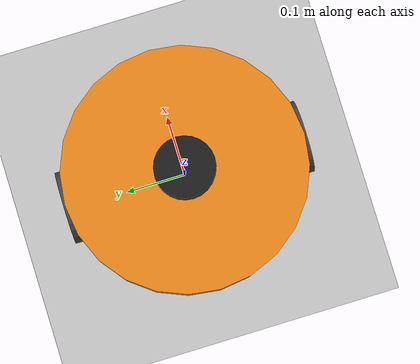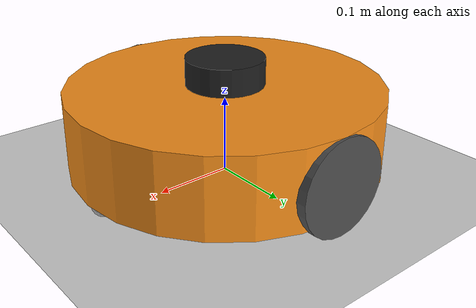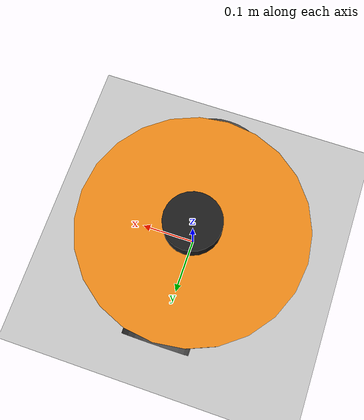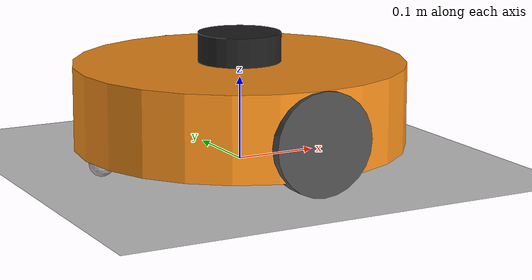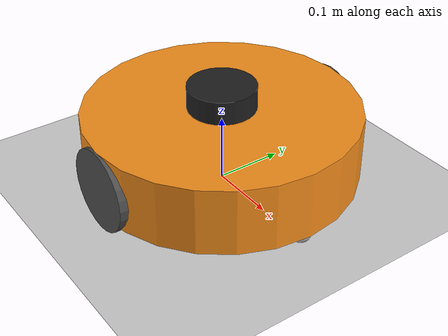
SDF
<sdf version="1.7">
 <world name="default">
  <light name="sun" type="directional">
   <pose>0 0 10 0 -0 0</pose>
   <diffuse>0.8 0.8 0.8 1</diffuse>
   <specular>0.2 0.2 0.2 1</specular>
   <attenuation>
    <range>1000</range>
    <constant>0.9</constant>
    <linear>0.01</linear>
    <quadratic>0.001</quadratic>
   </attenuation>
   <direction>-0.5 0.1 -0.9</direction>
   <spot><inner_angle>0</inner_angle><outer_angle>0</outer_angle><falloff>0</falloff></spot>
  </light>
  <model name="ground_plane">
   <static>1</static>
   <link name="link">
    <collision name="collision">
     <geometry><plane><normal>0 0 1</normal><size>100 100</size></plane></geometry>
     <surface><friction><ode><mu>100</mu><mu2>50</mu2></ode></friction></surface>
    </collision>
    <visual name="visual">
     <cast_shadows>0</cast_shadows>
     <geometry><plane><normal>0 0 1</normal><size>100 100</size></plane></geometry>
     <material>
      <script><uri>file://media/materials/scripts/gazebo.material</uri><name>Gazebo/Grey</name></script>
     </material>
    </visual>
   </link>
  </model>
  <gravity>0 0 -9.8</gravity>
  <magnetic_field>6e-06 2.3e-05 -4.2e-05</magnetic_field>
  <atmosphere type="adiabatic"/>
  <physics type="ode">
   <max_step_size>0.001</max_step_size>
   <real_time_factor>1</real_time_factor>
   <real_time_update_rate>1000</real_time_update_rate>
  </physics>
  <scene><ambient>0.4 0.4 0.4 1</ambient><background>0.7 0.7 0.7 1</background><shadows>1</shadows></scene>
  <spherical_coordinates>
   <surface_model>EARTH_WGS84</surface_model>
   <latitude_deg>0</latitude_deg>
   <longitude_deg>0</longitude_deg>
   <elevation>0</elevation>
   <heading_deg>0</heading_deg>
  </spherical_coordinates>
  <model name="demo">
   <link name="base_footprint">
    <inertial>
     <pose>0 0 0.000706 0 -0 0</pose>
     <mass>20.12</mass>
     <inertia><ixx>0.22842</ixx><ixy>0</ixy><ixz>0</ixz><iyy>0.22842</iyy><iyz>0</iyz><izz>0.410001</izz></inertia>
    </inertial>
    <collision name="base_footprint_fixed_joint_lump__base_link_collision">
     <pose>0 0 0.07 0 -0 0</pose>
     <geometry><cylinder><length>0.1</length><radius>0.2</radius></cylinder></geometry>
    </collision>
    <collision name="base_footprint_fixed_joint_lump__imu_link_collision_1">
     <pose>0 0 0.06 0 -0 0</pose>
     <geometry><box><size>0.02 0.02 0.02</size></box></geometry>
    </collision>
    <collision name="base_footprint_fixed_joint_lump__lidar_link_collision_2">
     <pose>0 0 0.13 0 -0 0</pose>
     <geometry><cylinder><length>0.05</length><radius>0.05</radius></cylinder></geometry>
    </collision>
    <visual name="base_footprint_visual"><geometry><box><size>0.01 0.01 0.01</size></box></geometry></visual>
    <visual name="base_footprint_fixed_joint_lump__base_link_visual_1">
     <pose>0 0 0.07 0 -0 0</pose>
     <geometry><cylinder><length>0.1</length><radius>0.2</radius></cylinder></geometry>
     <material>
      <script><name>Gazebo/Orange</name><uri>file://media/materials/scripts/gazebo.material</uri></script>
     </material>
    </visual>
    <visual name="base_footprint_fixed_joint_lump__imu_link_visual_2">
     <pose>0 0 0.06 0 -0 0</pose>
     <geometry><box><size>0.02 0.02 0.02</size></box></geometry>
     <material>
      <script><name>Gazebo/Black</name><uri>file://media/materials/scripts/gazebo.material</uri></script>
     </material>
    </visual>
    <visual name="base_footprint_fixed_joint_lump__lidar_link_visual_3">
     <pose>0 0 0.13 0 -0 0</pose>
     <geometry><cylinder><length>0.05</length><radius>0.05</radius></cylinder></geometry>
     <material>
      <script><name>Gazebo/Black</name><uri>file://media/materials/scripts/gazebo.material</uri></script>
     </material>
    </visual>
    <sensor name="imu_sensor" type="imu">
     <plugin name="imu_plugin" filename="libgazebo_ros_imu_sensor.so">
      <ros><namespace>/</namespace><remapping>~/out:=imu</remapping></ros>
      <initial_orientation_as_reference>0</initial_orientation_as_reference>
     </plugin>
     <always_on>1</always_on>
     <update_rate>100</update_rate>
     <visualize>1</visualize>
     <imu>
      <angular_velocity>
       <x>
        <noise type="gaussian">
         <mean>0</mean>
         <stddev>0.0002</stddev>
         <bias_mean>7.5e-06</bias_mean>
         <bias_stddev>8e-07</bias_stddev>
        </noise>
       </x>
       <y>
        <noise type="gaussian">
         <mean>0</mean>
         <stddev>0.0002</stddev>
         <bias_mean>7.5e-06</bias_mean>
         <bias_stddev>8e-07</bias_stddev>
        </noise>
       </y>
       <z>
        <noise type="gaussian">
         <mean>0</mean>
         <stddev>0.0002</stddev>
         <bias_mean>7.5e-06</bias_mean>
         <bias_stddev>8e-07</bias_stddev>
        </noise>
       </z>
      </angular_velocity>
      <linear_acceleration>
       <x>
        <noise type="gaussian">
         <mean>0</mean>
         <stddev>0.017</stddev>
         <bias_mean>0.1</bias_mean>
         <bias_stddev>0.001</bias_stddev>
        </noise>
       </x>
       <y>
        <noise type="gaussian">
         <mean>0</mean>
         <stddev>0.017</stddev>
         <bias_mean>0.1</bias_mean>
         <bias_stddev>0.001</bias_stddev>
        </noise>
       </y>
       <z>
        <noise type="gaussian">
         <mean>0</mean>
         <stddev>0.017</stddev>
         <bias_mean>0.1</bias_mean>
         <bias_stddev>0.001</bias_stddev>
        </noise>
       </z>
      </linear_acceleration>
     </imu>
     <pose>0 0 0.06 0 -0 0</pose>
    </sensor>
    <sensor name="head_hokuyo_sensor" type="ray">
     <visualize>1</visualize>
     <update_rate>2</update_rate>
     <ray>
      <scan>
       <horizontal>
        <samples>181</samples>
        <resolution>1</resolution>
        <min_angle>-3.14</min_angle>
        <max_angle>3.14</max_angle>
       </horizontal>
       <vertical><samples>1</samples><min_angle>0</min_angle><max_angle>0</max_angle></vertical>
      </scan>
      <range><min>0.08</min><max>6</max><resolution>0.05</resolution></range>
      <noise><type>gaussian</type><mean>0</mean><stddev>0.01</stddev></noise>
     </ray>
     <plugin name="gazebo_ros_head_hokuyo_controlle" filename="libgazebo_ros_ray_sensor.so">
      <ros><namespace>/</namespace><argument>~/out:=/scan</argument></ros>
      <output_type>sensor_msgs/LaserScan</output_type>
     </plugin>
     <pose>0 0 0.13 0 -0 0</pose>
    </sensor>
   </link>
   <joint name="back_caster_joint" type="revolute">
    <pose relative_to="base_footprint">0.18 0 0.015 0 -0 0</pose>
    <parent>base_footprint</parent>
    <child>back_caster_link</child>
    <axis>
     <xyz>0 1 0</xyz>
     <limit><lower>-1e+16</lower><upper>1e+16</upper></limit>
     <dynamics><spring_reference>0</spring_reference><spring_stiffness>0</spring_stiffness></dynamics>
    </axis>
   </joint>
   <link name="back_caster_link">
    <pose relative_to="back_caster_joint">0 0 0 0 -0 0</pose>
    <inertial>
     <mass>0.5</mass>
     <inertia><ixx>4.5e-05</ixx><ixy>0</ixy><ixz>0</ixz><iyy>4.5e-05</iyy><iyz>0</iyz><izz>4.5e-05</izz></inertia>
    </inertial>
    <collision name="back_caster_link_collision">
     <geometry><sphere><radius>0.015</radius></sphere></geometry>
    </collision>
    <visual name="back_caster_link_visual"><geometry><sphere><radius>0.015</radius></sphere></geometry></visual>
   </link>
   <joint name="front_caster_joint" type="revolute">
    <pose relative_to="base_footprint">-0.18 0 0.015 0 -0 0</pose>
    <parent>base_footprint</parent>
    <child>front_caster_link</child>
    <axis>
     <xyz>0 1 0</xyz>
     <limit><lower>-1e+16</lower><upper>1e+16</upper></limit>
     <dynamics><spring_reference>0</spring_reference><spring_stiffness>0</spring_stiffness></dynamics>
    </axis>
   </joint>
   <link name="front_caster_link">
    <pose relative_to="front_caster_joint">0 0 0 0 -0 0</pose>
    <inertial>
     <mass>0.5</mass>
     <inertia><ixx>4.5e-05</ixx><ixy>0</ixy><ixz>0</ixz><iyy>4.5e-05</iyy><iyz>0</iyz><izz>4.5e-05</izz></inertia>
    </inertial>
    <collision name="front_caster_link_collision">
     <geometry><sphere><radius>0.015</radius></sphere></geometry>
    </collision>
    <visual name="front_caster_link_visual"><geometry><sphere><radius>0.015</radius></sphere></geometry></visual>
   </link>
   <joint name="left_wheel_joint" type="revolute">
    <pose relative_to="base_footprint">0 0.19 0.06 0 -0 0</pose>
    <parent>base_footprint</parent>
    <child>left_wheel_link</child>
    <axis>
     <xyz>0 1 0</xyz>
     <limit><lower>-1e+16</lower><upper>1e+16</upper></limit>
     <dynamics><spring_reference>0</spring_reference><spring_stiffness>0</spring_stiffness></dynamics>
    </axis>
   </joint>
   <link name="left_wheel_link">
    <pose relative_to="left_wheel_joint">0 0 0 0 -0 0</pose>
    <inertial>
     <mass>2</mass>
     <inertia>
      <ixx>0.00190417</ixx>
      <ixy>0</ixy>
      <ixz>0</ixz>
      <iyy>0.00190417</iyy>
      <iyz>0</iyz>
      <izz>0.0036</izz>
     </inertia>
    </inertial>
    <collision name="left_wheel_link_collision">
     <pose>0 0 0 1.5708 -0 0</pose>
     <geometry><cylinder><length>0.025</length><radius>0.06</radius></cylinder></geometry>
    </collision>
    <visual name="left_wheel_link_visual">
     <pose>0 0 0 1.5708 -0 0</pose>
     <geometry><cylinder><length>0.025</length><radius>0.06</radius></cylinder></geometry>
     <material>
      <script><name>Gazebo/DarkGrey</name><uri>file://media/materials/scripts/gazebo.material</uri></script>
     </material>
    </visual>
   </link>
   <joint name="right_wheel_joint" type="revolute">
    <pose relative_to="base_footprint">0 -0.19 0.06 0 -0 0</pose>
    <parent>base_footprint</parent>
    <child>right_wheel_link</child>
    <axis>
     <xyz>0 1 0</xyz>
     <limit><lower>-1e+16</lower><upper>1e+16</upper></limit>
     <dynamics><spring_reference>0</spring_reference><spring_stiffness>0</spring_stiffness></dynamics>
    </axis>
   </joint>
   <link name="right_wheel_link">
    <pose relative_to="right_wheel_joint">0 0 0 0 -0 0</pose>
    <inertial>
     <mass>2</mass>
     <inertia>
      <ixx>0.00190417</ixx>
      <ixy>0</ixy>
      <ixz>0</ixz>
      <iyy>0.00190417</iyy>
      <iyz>0</iyz>
      <izz>0.0036</izz>
     </inertia>
    </inertial>
    <collision name="right_wheel_link_collision">
     <pose>0 0 0 1.5708 -0 0</pose>
     <geometry><cylinder><length>0.025</length><radius>0.06</radius></cylinder></geometry>
    </collision>
    <visual name="right_wheel_link_visual">
     <pose>0 0 0 1.5708 -0 0</pose>
     <geometry><cylinder><length>0.025</length><radius>0.06</radius></cylinder></geometry>
     <material>
      <script><name>Gazebo/DarkGrey</name><uri>file://media/materials/scripts/gazebo.material</uri></script>
     </material>
    </visual>
   </link>
   <static>0</static>
   <plugin name="differential_drive_controller" filename="libgazebo_ros_diff_drive.so">
    <ros>
     <namespace>/</namespace>
     <argument>--ros-args --remap cmd_vel:=cmd_vel</argument>
     <argument>--ros-args --remap odom:=odom</argument>
     <update_rate>10.0</update_rate>
    </ros>
    <left_joint>left_wheel_joint</left_joint>
    <right_joint>right_wheel_joint</right_joint>
    <update_rate>10.0</update_rate>
    <wheel_separation>0.38</wheel_separation>
    <wheel_diameter>0.12</wheel_diameter>
    <max_wheel_torque>30</max_wheel_torque>
    <max_wheel_acceleration>1.8</max_wheel_acceleration>
    <odometry_frame>odom</odometry_frame>
    <publish_odom>1</publish_odom>
    <publish_odom_tf>1</publish_odom_tf>
    <robot_base_frame>base_footprint</robot_base_frame>
   </plugin>
   <plugin name="gazebo_ros_joint_state_publisher" filename="libgazebo_ros_joint_state_publisher.so">
    <ros><namespace>/</namespace><argument>--ros-args --remap joint_states:=joint_states</argument></ros>
    <update_rate>10</update_rate>
    <joint_name>left_wheel_joint</joint_name>
    <joint_name>right_wheel_joint</joint_name>
    <joint_name>front_caster_joint</joint_name>
    <joint_name>back_caster_joint</joint_name>
   </plugin>
   <pose>-0.000256 0.000266 -0 -0 -0 -0.000612</pose>
  </model>
 </world>
</sdf>
